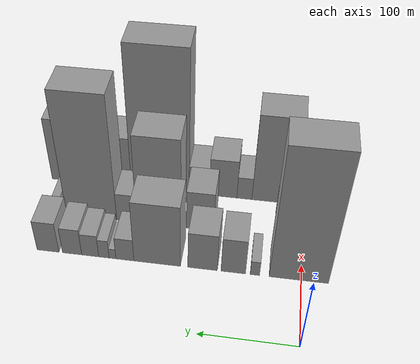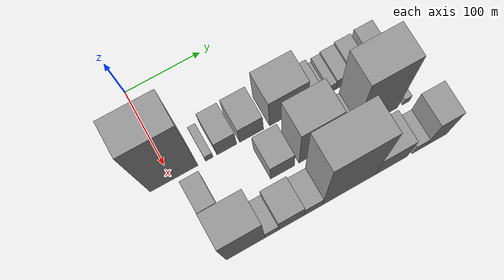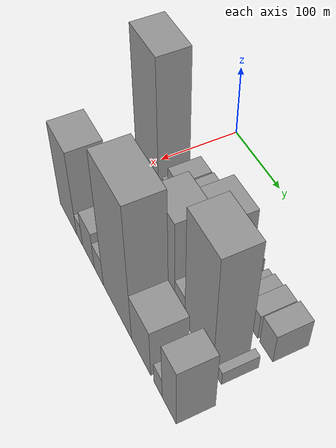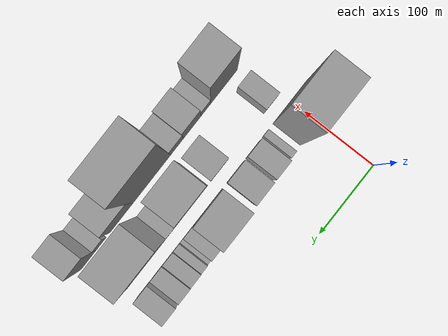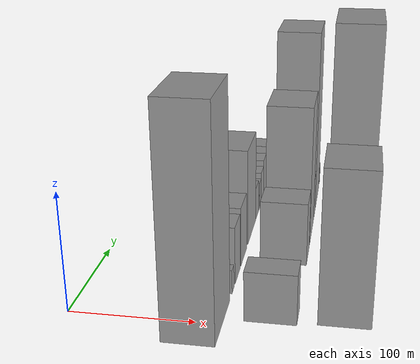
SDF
<sdf version="1.6">
 <world name="default">
  <model name="building_15">
   <static>1</static>
   <pose>100.0000 2.7650 0 0.000000 0.000000 0.000000</pose>
   <link name="link">
    <pose>0 0 91.50 0 0 0</pose>
    <collision name="collision"><geometry><box><size>40.0000 61.5131 183.0000</size></box></geometry></collision>
    <visual name="visual">
     <cast_shadows>0</cast_shadows>
     <geometry><box><size>40.0000 61.5131 183.0000</size></box></geometry>
     <material>
      <script>
       <uri>model://grey_wall/materials/scripts</uri>
       <uri>model://grey_wall/materials/textures</uri>
       <name>vrc/grey_wall</name>
      </script>
     </material>
    </visual>
   </link>
  </model>
  <model name="building_16">
   <static>1</static>
   <pose>100.0000 48.4366 0 0.000000 0.000000 0.000000</pose>
   <link name="link">
    <pose>0 0 10.50 0 0 0</pose>
    <collision name="collision"><geometry><box><size>40.0000 9.8300 21.0000</size></box></geometry></collision>
    <visual name="visual">
     <cast_shadows>0</cast_shadows>
     <geometry><box><size>40.0000 9.8300 21.0000</size></box></geometry>
     <material>
      <script>
       <uri>model://grey_wall/materials/scripts</uri>
       <uri>model://grey_wall/materials/textures</uri>
       <name>vrc/grey_wall</name>
      </script>
     </material>
    </visual>
   </link>
  </model>
  <model name="building_17">
   <static>1</static>
   <pose>100.0000 71.2778 0 0.000000 0.000000 0.000000</pose>
   <link name="link">
    <pose>0 0 25.50 0 0 0</pose>
    <collision name="collision"><geometry><box><size>40.0000 25.8524 51.0000</size></box></geometry></collision>
    <visual name="visual">
     <cast_shadows>0</cast_shadows>
     <geometry><box><size>40.0000 25.8524 51.0000</size></box></geometry>
     <material>
      <script>
       <uri>model://grey_wall/materials/scripts</uri>
       <uri>model://grey_wall/materials/textures</uri>
       <name>vrc/grey_wall</name>
      </script>
     </material>
    </visual>
   </link>
  </model>
  <model name="building_18">
   <static>1</static>
   <pose>100.0000 103.9225 0 0.000000 0.000000 0.000000</pose>
   <link name="link">
    <pose>0 0 27.00 0 0 0</pose>
    <collision name="collision"><geometry><box><size>40.0000 31.4371 54.0000</size></box></geometry></collision>
    <visual name="visual">
     <cast_shadows>0</cast_shadows>
     <geometry><box><size>40.0000 31.4371 54.0000</size></box></geometry>
     <material>
      <script>
       <uri>model://grey_wall/materials/scripts</uri>
       <uri>model://grey_wall/materials/textures</uri>
       <name>vrc/grey_wall</name>
      </script>
     </material>
    </visual>
   </link>
  </model>
  <model name="building_19">
   <static>1</static>
   <pose>100.0000 152.8931 0 0.000000 0.000000 0.000000</pose>
   <link name="link">
    <pose>0 0 45.00 0 0 0</pose>
    <collision name="collision"><geometry><box><size>40.0000 50.5041 90.0000</size></box></geometry></collision>
    <visual name="visual">
     <cast_shadows>0</cast_shadows>
     <geometry><box><size>40.0000 50.5041 90.0000</size></box></geometry>
     <material>
      <script>
       <uri>model://grey_wall/materials/scripts</uri>
       <uri>model://grey_wall/materials/textures</uri>
       <name>vrc/grey_wall</name>
      </script>
     </material>
    </visual>
   </link>
  </model>
  <model name="building_20">
   <static>1</static>
   <pose>100.0000 187.9797 0 0.000000 0.000000 0.000000</pose>
   <link name="link">
    <pose>0 0 16.50 0 0 0</pose>
    <collision name="collision"><geometry><box><size>40.0000 19.6692 33.0000</size></box></geometry></collision>
    <visual name="visual">
     <cast_shadows>0</cast_shadows>
     <geometry><box><size>40.0000 19.6692 33.0000</size></box></geometry>
     <material>
      <script>
       <uri>model://grey_wall/materials/scripts</uri>
       <uri>model://grey_wall/materials/textures</uri>
       <name>vrc/grey_wall</name>
      </script>
     </material>
    </visual>
   </link>
  </model>
  <model name="building_21">
   <static>1</static>
   <pose>100.0000 201.5192 0 0.000000 0.000000 0.000000</pose>
   <link name="link">
    <pose>0 0 7.50 0 0 0</pose>
    <collision name="collision"><geometry><box><size>40.0000 7.4098 15.0000</size></box></geometry></collision>
    <visual name="visual">
     <cast_shadows>0</cast_shadows>
     <geometry><box><size>40.0000 7.4098 15.0000</size></box></geometry>
     <material>
      <script>
       <uri>model://grey_wall/materials/scripts</uri>
       <uri>model://grey_wall/materials/textures</uri>
       <name>vrc/grey_wall</name>
      </script>
     </material>
    </visual>
   </link>
  </model>
  <model name="building_22">
   <static>1</static>
   <pose>100.0000 210.9200 0 0.000000 0.000000 0.000000</pose>
   <link name="link">
    <pose>0 0 13.50 0 0 0</pose>
    <collision name="collision"><geometry><box><size>40.0000 11.3917 27.0000</size></box></geometry></collision>
    <visual name="visual">
     <cast_shadows>0</cast_shadows>
     <geometry><box><size>40.0000 11.3917 27.0000</size></box></geometry>
     <material>
      <script>
       <uri>model://grey_wall/materials/scripts</uri>
       <uri>model://grey_wall/materials/textures</uri>
       <name>vrc/grey_wall</name>
      </script>
     </material>
    </visual>
   </link>
  </model>
  <model name="building_23">
   <static>1</static>
   <pose>100.0000 226.0352 0 0.000000 0.000000 0.000000</pose>
   <link name="link">
    <pose>0 0 16.50 0 0 0</pose>
    <collision name="collision"><geometry><box><size>40.0000 18.8387 33.0000</size></box></geometry></collision>
    <visual name="visual">
     <cast_shadows>0</cast_shadows>
     <geometry><box><size>40.0000 18.8387 33.0000</size></box></geometry>
     <material>
      <script>
       <uri>model://grey_wall/materials/scripts</uri>
       <uri>model://grey_wall/materials/textures</uri>
       <name>vrc/grey_wall</name>
      </script>
     </material>
    </visual>
   </link>
  </model>
  <model name="building_24">
   <static>1</static>
   <pose>100.0000 246.1372 0 0.000000 0.000000 0.000000</pose>
   <link name="link">
    <pose>0 0 19.50 0 0 0</pose>
    <collision name="collision"><geometry><box><size>40.0000 21.3654 39.0000</size></box></geometry></collision>
    <visual name="visual">
     <cast_shadows>0</cast_shadows>
     <geometry><box><size>40.0000 21.3654 39.0000</size></box></geometry>
     <material>
      <script>
       <uri>model://grey_wall/materials/scripts</uri>
       <uri>model://grey_wall/materials/textures</uri>
       <name>vrc/grey_wall</name>
      </script>
     </material>
    </visual>
   </link>
  </model>
  <model name="building_25">
   <static>1</static>
   <pose>100.0000 273.0623 0 0.000000 0.000000 0.000000</pose>
   <link name="link">
    <pose>0 0 22.50 0 0 0</pose>
    <collision name="collision"><geometry><box><size>40.0000 24.4847 45.0000</size></box></geometry></collision>
    <visual name="visual">
     <cast_shadows>0</cast_shadows>
     <geometry><box><size>40.0000 24.4847 45.0000</size></box></geometry>
     <material>
      <script>
       <uri>model://grey_wall/materials/scripts</uri>
       <uri>model://grey_wall/materials/textures</uri>
       <name>vrc/grey_wall</name>
      </script>
     </material>
    </visual>
   </link>
  </model>
  <model name="building_52">
   <static>1</static>
   <pose>155.0000 18.9682 0 0.000000 0.000000 0.000000</pose>
   <link name="link">
    <pose>0 0 21.00 0 0 0</pose>
    <collision name="collision"><geometry><box><size>40.0000 23.5320 42.0000</size></box></geometry></collision>
    <visual name="visual">
     <cast_shadows>0</cast_shadows>
     <geometry><box><size>40.0000 23.5320 42.0000</size></box></geometry>
     <material>
      <script>
       <uri>model://grey_wall/materials/scripts</uri>
       <uri>model://grey_wall/materials/textures</uri>
       <name>vrc/grey_wall</name>
      </script>
     </material>
    </visual>
   </link>
  </model>
  <model name="building_53">
   <static>1</static>
   <pose>155.0000 113.4926 0 0.000000 0.000000 0.000000</pose>
   <link name="link">
    <pose>0 0 28.50 0 0 0</pose>
    <collision name="collision"><geometry><box><size>40.0000 31.1722 57.0000</size></box></geometry></collision>
    <visual name="visual">
     <cast_shadows>0</cast_shadows>
     <geometry><box><size>40.0000 31.1722 57.0000</size></box></geometry>
     <material>
      <script>
       <uri>model://grey_wall/materials/scripts</uri>
       <uri>model://grey_wall/materials/textures</uri>
       <name>vrc/grey_wall</name>
      </script>
     </material>
    </visual>
   </link>
  </model>
  <model name="building_54">
   <static>1</static>
   <pose>155.0000 160.6011 0 0.000000 0.000000 0.000000</pose>
   <link name="link">
    <pose>0 0 64.50 0 0 0</pose>
    <collision name="collision"><geometry><box><size>40.0000 51.0449 129.0000</size></box></geometry></collision>
    <visual name="visual">
     <cast_shadows>0</cast_shadows>
     <geometry><box><size>40.0000 51.0449 129.0000</size></box></geometry>
     <material>
      <script>
       <uri>model://grey_wall/materials/scripts</uri>
       <uri>model://grey_wall/materials/textures</uri>
       <name>vrc/grey_wall</name>
      </script>
     </material>
    </visual>
   </link>
  </model>
  <model name="building_55">
   <static>1</static>
   <pose>155.0000 197.4660 0 0.000000 0.000000 0.000000</pose>
   <link name="link">
    <pose>0 0 21.00 0 0 0</pose>
    <collision name="collision"><geometry><box><size>40.0000 22.6850 42.0000</size></box></geometry></collision>
    <visual name="visual">
     <cast_shadows>0</cast_shadows>
     <geometry><box><size>40.0000 22.6850 42.0000</size></box></geometry>
     <material>
      <script>
       <uri>model://grey_wall/materials/scripts</uri>
       <uri>model://grey_wall/materials/textures</uri>
       <name>vrc/grey_wall</name>
      </script>
     </material>
    </visual>
   </link>
  </model>
  <model name="building_56">
   <static>1</static>
   <pose>155.0000 238.2118 0 0.000000 0.000000 0.000000</pose>
   <link name="link">
    <pose>0 0 88.50 0 0 0</pose>
    <collision name="collision"><geometry><box><size>40.0000 58.8065 177.0000</size></box></geometry></collision>
    <visual name="visual">
     <cast_shadows>0</cast_shadows>
     <geometry><box><size>40.0000 58.8065 177.0000</size></box></geometry>
     <material>
      <script>
       <uri>model://grey_wall/materials/scripts</uri>
       <uri>model://grey_wall/materials/textures</uri>
       <name>vrc/grey_wall</name>
      </script>
     </material>
    </visual>
   </link>
  </model>
  <model name="building_57">
   <static>1</static>
   <pose>155.0000 279.4679 0 0.000000 0.000000 0.000000</pose>
   <link name="link">
    <pose>0 0 10.50 0 0 0</pose>
    <collision name="collision"><geometry><box><size>40.0000 9.7056 21.0000</size></box></geometry></collision>
    <visual name="visual">
     <cast_shadows>0</cast_shadows>
     <geometry><box><size>40.0000 9.7056 21.0000</size></box></geometry>
     <material>
      <script>
       <uri>model://grey_wall/materials/scripts</uri>
       <uri>model://grey_wall/materials/textures</uri>
       <name>vrc/grey_wall</name>
      </script>
     </material>
    </visual>
   </link>
  </model>
  <model name="building_84">
   <static>1</static>
   <pose>210.0000 34.9452 0 0.000000 0.000000 0.000000</pose>
   <link name="link">
    <pose>0 0 63.00 0 0 0</pose>
    <collision name="collision"><geometry><box><size>40.0000 49.0628 126.0000</size></box></geometry></collision>
    <visual name="visual">
     <cast_shadows>0</cast_shadows>
     <geometry><box><size>40.0000 49.0628 126.0000</size></box></geometry>
     <material>
      <script>
       <uri>model://grey_wall/materials/scripts</uri>
       <uri>model://grey_wall/materials/textures</uri>
       <name>vrc/grey_wall</name>
      </script>
     </material>
    </visual>
   </link>
  </model>
  <model name="building_85">
   <static>1</static>
   <pose>210.0000 68.2569 0 0.000000 0.000000 0.000000</pose>
   <link name="link">
    <pose>0 0 16.50 0 0 0</pose>
    <collision name="collision"><geometry><box><size>40.0000 17.5605 33.0000</size></box></geometry></collision>
    <visual name="visual">
     <cast_shadows>0</cast_shadows>
     <geometry><box><size>40.0000 17.5605 33.0000</size></box></geometry>
     <material>
      <script>
       <uri>model://grey_wall/materials/scripts</uri>
       <uri>model://grey_wall/materials/textures</uri>
       <name>vrc/grey_wall</name>
      </script>
     </material>
    </visual>
   </link>
  </model>
  <model name="building_86">
   <static>1</static>
   <pose>210.0000 93.2502 0 0.000000 0.000000 0.000000</pose>
   <link name="link">
    <pose>0 0 28.50 0 0 0</pose>
    <collision name="collision"><geometry><box><size>40.0000 32.4262 57.0000</size></box></geometry></collision>
    <visual name="visual">
     <cast_shadows>0</cast_shadows>
     <geometry><box><size>40.0000 32.4262 57.0000</size></box></geometry>
     <material>
      <script>
       <uri>model://grey_wall/materials/scripts</uri>
       <uri>model://grey_wall/materials/textures</uri>
       <name>vrc/grey_wall</name>
      </script>
     </material>
    </visual>
   </link>
  </model>
  <model name="building_87">
   <static>1</static>
   <pose>210.0000 121.4754 0 0.000000 0.000000 0.000000</pose>
   <link name="link">
    <pose>0 0 21.00 0 0 0</pose>
    <collision name="collision"><geometry><box><size>40.0000 24.0241 42.0000</size></box></geometry></collision>
    <visual name="visual">
     <cast_shadows>0</cast_shadows>
     <geometry><box><size>40.0000 24.0241 42.0000</size></box></geometry>
     <material>
      <script>
       <uri>model://grey_wall/materials/scripts</uri>
       <uri>model://grey_wall/materials/textures</uri>
       <name>vrc/grey_wall</name>
      </script>
     </material>
    </visual>
   </link>
  </model>
  <model name="building_88">
   <static>1</static>
   <pose>210.0000 168.2742 0 0.000000 0.000000 0.000000</pose>
   <link name="link">
    <pose>0 0 100.50 0 0 0</pose>
    <collision name="collision"><geometry><box><size>40.0000 69.5734 201.0000</size></box></geometry></collision>
    <visual name="visual">
     <cast_shadows>0</cast_shadows>
     <geometry><box><size>40.0000 69.5734 201.0000</size></box></geometry>
     <material>
      <script>
       <uri>model://grey_wall/materials/scripts</uri>
       <uri>model://grey_wall/materials/textures</uri>
       <name>vrc/grey_wall</name>
      </script>
     </material>
    </visual>
   </link>
  </model>
  <model name="building_89">
   <static>1</static>
   <pose>210.0000 224.8170 0 0.000000 0.000000 0.000000</pose>
   <link name="link">
    <pose>0 0 37.50 0 0 0</pose>
    <collision name="collision"><geometry><box><size>40.0000 43.5122 75.0000</size></box></geometry></collision>
    <visual name="visual">
     <cast_shadows>0</cast_shadows>
     <geometry><box><size>40.0000 43.5122 75.0000</size></box></geometry>
     <material>
      <script>
       <uri>model://grey_wall/materials/scripts</uri>
       <uri>model://grey_wall/materials/textures</uri>
       <name>vrc/grey_wall</name>
      </script>
     </material>
    </visual>
   </link>
  </model>
  <model name="building_90">
   <static>1</static>
   <pose>210.0000 262.4309 0 0.000000 0.000000 0.000000</pose>
   <link name="link">
    <pose>0 0 16.50 0 0 0</pose>
    <collision name="collision"><geometry><box><size>40.0000 17.7157 33.0000</size></box></geometry></collision>
    <visual name="visual">
     <cast_shadows>0</cast_shadows>
     <geometry><box><size>40.0000 17.7157 33.0000</size></box></geometry>
     <material>
      <script>
       <uri>model://grey_wall/materials/scripts</uri>
       <uri>model://grey_wall/materials/textures</uri>
       <name>vrc/grey_wall</name>
      </script>
     </material>
    </visual>
   </link>
  </model>
  <model name="building_91">
   <static>1</static>
   <pose>210.0000 285.8674 0 0.000000 0.000000 0.000000</pose>
   <link name="link">
    <pose>0 0 46.50 0 0 0</pose>
    <collision name="collision"><geometry><box><size>40.0000 29.1573 93.0000</size></box></geometry></collision>
    <visual name="visual">
     <cast_shadows>0</cast_shadows>
     <geometry><box><size>40.0000 29.1573 93.0000</size></box></geometry>
     <material>
      <script>
       <uri>model://grey_wall/materials/scripts</uri>
       <uri>model://grey_wall/materials/textures</uri>
       <name>vrc/grey_wall</name>
      </script>
     </material>
    </visual>
   </link>
  </model>
 </world>
</sdf>
